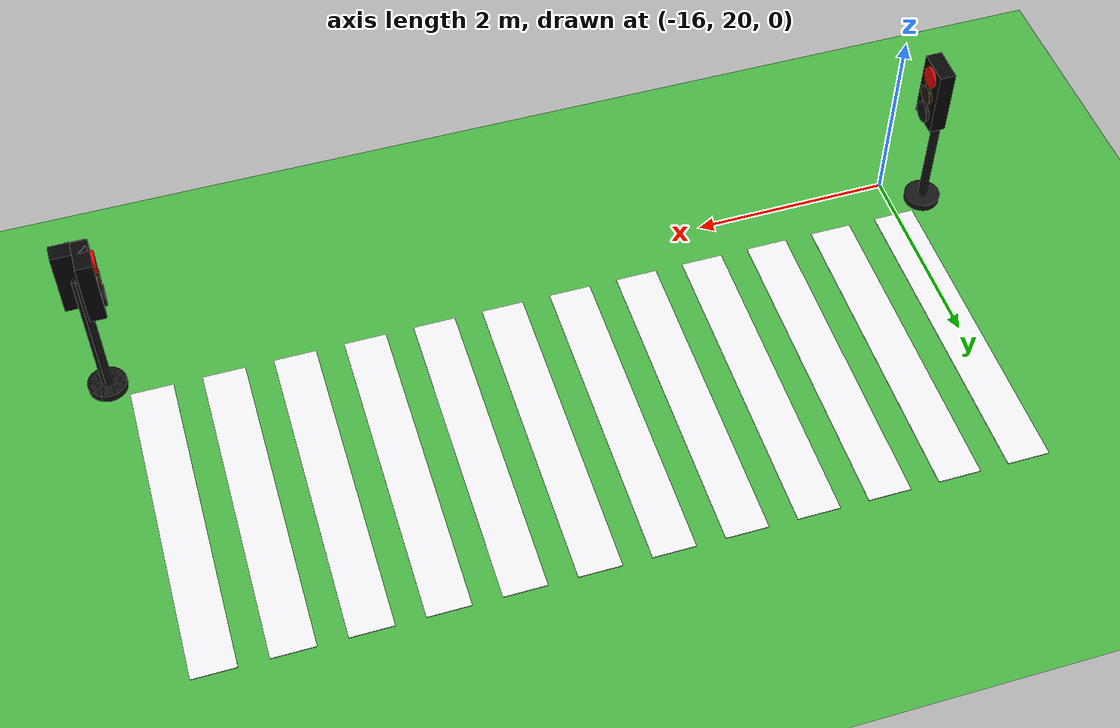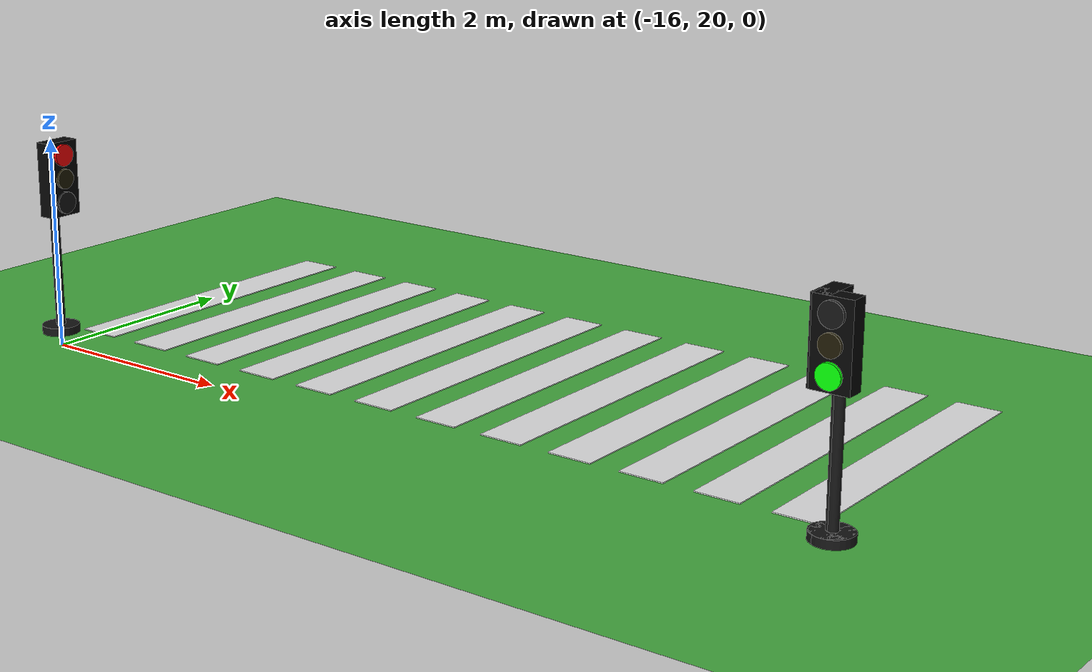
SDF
<sdf version="1.10">
 <world name="city_second">
  <model name="ground_plane">
   <static>true</static>
   <link name="link">
    <collision name="collision">
     <geometry><plane><normal>0 0 1</normal><size>300 300</size></plane></geometry>
    </collision>
    <visual name="visual">
     <geometry><plane><normal>0 0 1</normal><size>300 300</size></plane></geometry>
     <material>
      <ambient>0.280000001 0.689999998 0.25999999 1</ambient>
      <diffuse>0.280000001 0.689999998 0.25999999 1</diffuse>
      <specular>0.0299999993 0.0299999993 0.0299999993 1</specular>
     </material>
    </visual>
    <inertial>
     <mass>1</mass>
     <inertia><ixx>1</ixx><ixy>0</ixy><ixz>0</ixz><iyy>1</iyy><iyz>0</iyz><izz>1</izz></inertia>
    </inertial>
   </link>
  </model>
  <model name="crosswalk_h_1_1_south_7_6">
   <static>true</static>
   <pose>-12.1145 22.0322 0.017000000000000001 0 0 0</pose>
   <link name="stripe_1">
    <collision name="collision">
     <geometry><box><size>0.41999999999999998 3.2000000000000002 0.01</size></box></geometry>
    </collision>
    <visual name="visual">
     <geometry><box><size>0.41999999999999998 3.2000000000000002 0.01</size></box></geometry>
     <material>
      <ambient>0.920000017 0.920000017 0.930000007 1</ambient>
      <diffuse>0.920000017 0.920000017 0.930000007 1</diffuse>
      <specular>0.0299999993 0.0299999993 0.0299999993 1</specular>
     </material>
    </visual>
    <pose>-3.8500000000000001 0 0 0 0 0</pose>
    <inertial>
     <mass>1</mass>
     <inertia><ixx>1</ixx><ixy>0</ixy><ixz>0</ixz><iyy>1</iyy><iyz>0</iyz><izz>1</izz></inertia>
    </inertial>
   </link>
   <link name="stripe_2">
    <collision name="collision">
     <geometry><box><size>0.41999999999999998 3.2000000000000002 0.01</size></box></geometry>
    </collision>
    <visual name="visual">
     <geometry><box><size>0.41999999999999998 3.2000000000000002 0.01</size></box></geometry>
     <material>
      <ambient>0.920000017 0.920000017 0.930000007 1</ambient>
      <diffuse>0.920000017 0.920000017 0.930000007 1</diffuse>
      <specular>0.0299999993 0.0299999993 0.0299999993 1</specular>
     </material>
    </visual>
    <pose>-3.1499999999999999 0 0 0 0 0</pose>
    <inertial>
     <mass>1</mass>
     <inertia><ixx>1</ixx><ixy>0</ixy><ixz>0</ixz><iyy>1</iyy><iyz>0</iyz><izz>1</izz></inertia>
    </inertial>
   </link>
   <link name="stripe_3">
    <collision name="collision">
     <geometry><box><size>0.41999999999999998 3.2000000000000002 0.01</size></box></geometry>
    </collision>
    <visual name="visual">
     <geometry><box><size>0.41999999999999998 3.2000000000000002 0.01</size></box></geometry>
     <material>
      <ambient>0.920000017 0.920000017 0.930000007 1</ambient>
      <diffuse>0.920000017 0.920000017 0.930000007 1</diffuse>
      <specular>0.0299999993 0.0299999993 0.0299999993 1</specular>
     </material>
    </visual>
    <pose>-2.4500000000000002 0 0 0 0 0</pose>
    <inertial>
     <mass>1</mass>
     <inertia><ixx>1</ixx><ixy>0</ixy><ixz>0</ixz><iyy>1</iyy><iyz>0</iyz><izz>1</izz></inertia>
    </inertial>
   </link>
   <link name="stripe_4">
    <collision name="collision">
     <geometry><box><size>0.41999999999999998 3.2000000000000002 0.01</size></box></geometry>
    </collision>
    <visual name="visual">
     <geometry><box><size>0.41999999999999998 3.2000000000000002 0.01</size></box></geometry>
     <material>
      <ambient>0.920000017 0.920000017 0.930000007 1</ambient>
      <diffuse>0.920000017 0.920000017 0.930000007 1</diffuse>
      <specular>0.0299999993 0.0299999993 0.0299999993 1</specular>
     </material>
    </visual>
    <pose>-1.75 0 0 0 0 0</pose>
    <inertial>
     <mass>1</mass>
     <inertia><ixx>1</ixx><ixy>0</ixy><ixz>0</ixz><iyy>1</iyy><iyz>0</iyz><izz>1</izz></inertia>
    </inertial>
   </link>
   <link name="stripe_5">
    <collision name="collision">
     <geometry><box><size>0.41999999999999998 3.2000000000000002 0.01</size></box></geometry>
    </collision>
    <visual name="visual">
     <geometry><box><size>0.41999999999999998 3.2000000000000002 0.01</size></box></geometry>
     <material>
      <ambient>0.920000017 0.920000017 0.930000007 1</ambient>
      <diffuse>0.920000017 0.920000017 0.930000007 1</diffuse>
      <specular>0.0299999993 0.0299999993 0.0299999993 1</specular>
     </material>
    </visual>
    <pose>-1.05 0 0 0 0 0</pose>
    <inertial>
     <mass>1</mass>
     <inertia><ixx>1</ixx><ixy>0</ixy><ixz>0</ixz><iyy>1</iyy><iyz>0</iyz><izz>1</izz></inertia>
    </inertial>
   </link>
   <link name="stripe_6">
    <collision name="collision">
     <geometry><box><size>0.41999999999999998 3.2000000000000002 0.01</size></box></geometry>
    </collision>
    <visual name="visual">
     <geometry><box><size>0.41999999999999998 3.2000000000000002 0.01</size></box></geometry>
     <material>
      <ambient>0.920000017 0.920000017 0.930000007 1</ambient>
      <diffuse>0.920000017 0.920000017 0.930000007 1</diffuse>
      <specular>0.0299999993 0.0299999993 0.0299999993 1</specular>
     </material>
    </visual>
    <pose>-0.34999999999999998 0 0 0 0 0</pose>
    <inertial>
     <mass>1</mass>
     <inertia><ixx>1</ixx><ixy>0</ixy><ixz>0</ixz><iyy>1</iyy><iyz>0</iyz><izz>1</izz></inertia>
    </inertial>
   </link>
   <link name="stripe_7">
    <collision name="collision">
     <geometry><box><size>0.41999999999999998 3.2000000000000002 0.01</size></box></geometry>
    </collision>
    <visual name="visual">
     <geometry><box><size>0.41999999999999998 3.2000000000000002 0.01</size></box></geometry>
     <material>
      <ambient>0.920000017 0.920000017 0.930000007 1</ambient>
      <diffuse>0.920000017 0.920000017 0.930000007 1</diffuse>
      <specular>0.0299999993 0.0299999993 0.0299999993 1</specular>
     </material>
    </visual>
    <pose>0.34999999999999998 0 0 0 0 0</pose>
    <inertial>
     <mass>1</mass>
     <inertia><ixx>1</ixx><ixy>0</ixy><ixz>0</ixz><iyy>1</iyy><iyz>0</iyz><izz>1</izz></inertia>
    </inertial>
   </link>
   <link name="stripe_8">
    <collision name="collision">
     <geometry><box><size>0.41999999999999998 3.2000000000000002 0.01</size></box></geometry>
    </collision>
    <visual name="visual">
     <geometry><box><size>0.41999999999999998 3.2000000000000002 0.01</size></box></geometry>
     <material>
      <ambient>0.920000017 0.920000017 0.930000007 1</ambient>
      <diffuse>0.920000017 0.920000017 0.930000007 1</diffuse>
      <specular>0.0299999993 0.0299999993 0.0299999993 1</specular>
     </material>
    </visual>
    <pose>1.05 0 0 0 0 0</pose>
    <inertial>
     <mass>1</mass>
     <inertia><ixx>1</ixx><ixy>0</ixy><ixz>0</ixz><iyy>1</iyy><iyz>0</iyz><izz>1</izz></inertia>
    </inertial>
   </link>
   <link name="stripe_9">
    <collision name="collision">
     <geometry><box><size>0.41999999999999998 3.2000000000000002 0.01</size></box></geometry>
    </collision>
    <visual name="visual">
     <geometry><box><size>0.41999999999999998 3.2000000000000002 0.01</size></box></geometry>
     <material>
      <ambient>0.920000017 0.920000017 0.930000007 1</ambient>
      <diffuse>0.920000017 0.920000017 0.930000007 1</diffuse>
      <specular>0.0299999993 0.0299999993 0.0299999993 1</specular>
     </material>
    </visual>
    <pose>1.75 0 0 0 0 0</pose>
    <inertial>
     <mass>1</mass>
     <inertia><ixx>1</ixx><ixy>0</ixy><ixz>0</ixz><iyy>1</iyy><iyz>0</iyz><izz>1</izz></inertia>
    </inertial>
   </link>
   <link name="stripe_10">
    <collision name="collision">
     <geometry><box><size>0.41999999999999998 3.2000000000000002 0.01</size></box></geometry>
    </collision>
    <visual name="visual">
     <geometry><box><size>0.41999999999999998 3.2000000000000002 0.01</size></box></geometry>
     <material>
      <ambient>0.920000017 0.920000017 0.930000007 1</ambient>
      <diffuse>0.920000017 0.920000017 0.930000007 1</diffuse>
      <specular>0.0299999993 0.0299999993 0.0299999993 1</specular>
     </material>
    </visual>
    <pose>2.4500000000000002 0 0 0 0 0</pose>
    <inertial>
     <mass>1</mass>
     <inertia><ixx>1</ixx><ixy>0</ixy><ixz>0</ixz><iyy>1</iyy><iyz>0</iyz><izz>1</izz></inertia>
    </inertial>
   </link>
   <link name="stripe_11">
    <collision name="collision">
     <geometry><box><size>0.41999999999999998 3.2000000000000002 0.01</size></box></geometry>
    </collision>
    <visual name="visual">
     <geometry><box><size>0.41999999999999998 3.2000000000000002 0.01</size></box></geometry>
     <material>
      <ambient>0.920000017 0.920000017 0.930000007 1</ambient>
      <diffuse>0.920000017 0.920000017 0.930000007 1</diffuse>
      <specular>0.0299999993 0.0299999993 0.0299999993 1</specular>
     </material>
    </visual>
    <pose>3.1499999999999999 0 0 0 0 0</pose>
    <inertial>
     <mass>1</mass>
     <inertia><ixx>1</ixx><ixy>0</ixy><ixz>0</ixz><iyy>1</iyy><iyz>0</iyz><izz>1</izz></inertia>
    </inertial>
   </link>
   <link name="stripe_12">
    <collision name="collision">
     <geometry><box><size>0.41999999999999998 3.2000000000000002 0.01</size></box></geometry>
    </collision>
    <visual name="visual">
     <geometry><box><size>0.41999999999999998 3.2000000000000002 0.01</size></box></geometry>
     <material>
      <ambient>0.920000017 0.920000017 0.930000007 1</ambient>
      <diffuse>0.920000017 0.920000017 0.930000007 1</diffuse>
      <specular>0.0299999993 0.0299999993 0.0299999993 1</specular>
     </material>
    </visual>
    <pose>3.8500000000000001 0 0 0 0 0</pose>
    <inertial>
     <mass>1</mass>
     <inertia><ixx>1</ixx><ixy>0</ixy><ixz>0</ixz><iyy>1</iyy><iyz>0</iyz><izz>1</izz></inertia>
    </inertial>
   </link>
  </model>
  <model name="simple_traffic_light_green_south_1_3_2">
   <static>true</static>
   <pose>-7.8629358100978832 20.257268512716777 0 0 0 -3.1415900000000754</pose>
   <link name="base">
    <pose>0 0 0.040000000000000001 0 0 0</pose>
    <collision name="collision">
     <geometry>
      <cylinder><radius>0.17999999999999999</radius><length>0.080000000000000002</length></cylinder>
     </geometry>
    </collision>
    <visual name="visual">
     <geometry>
      <cylinder><radius>0.17999999999999999</radius><length>0.080000000000000002</length></cylinder>
     </geometry>
     <material>
      <ambient>0.0799999982 0.0799999982 0.0799999982 1</ambient>
      <diffuse>0.0799999982 0.0799999982 0.0799999982 1</diffuse>
      <specular>0.150000006 0.150000006 0.150000006 1</specular>
      <emissive>0 0 0 1</emissive>
     </material>
    </visual>
   </link>
   <link name="pole">
    <pose>0 0 0.80000000000000004 0 0 0</pose>
    <collision name="collision">
     <geometry>
      <cylinder><radius>0.044999999999999998</radius><length>1.6000000000000001</length></cylinder>
     </geometry>
    </collision>
    <visual name="visual">
     <geometry>
      <cylinder><radius>0.044999999999999998</radius><length>1.6000000000000001</length></cylinder>
     </geometry>
     <material>
      <ambient>0.0799999982 0.0799999982 0.0799999982 1</ambient>
      <diffuse>0.0799999982 0.0799999982 0.0799999982 1</diffuse>
      <specular>0.150000006 0.150000006 0.150000006 1</specular>
      <emissive>0 0 0 1</emissive>
     </material>
    </visual>
   </link>
   <link name="signal_box">
    <pose>0 0.089999999999999997 1.55 0 0 0</pose>
    <collision name="collision">
     <geometry><box><size>0.34000000000000002 0.16 0.71999999999999997</size></box></geometry>
    </collision>
    <visual name="visual">
     <geometry><box><size>0.34000000000000002 0.16 0.71999999999999997</size></box></geometry>
     <material>
      <ambient>0.0199999996 0.0199999996 0.0199999996 1</ambient>
      <diffuse>0.0199999996 0.0199999996 0.0199999996 1</diffuse>
      <specular>0.150000006 0.150000006 0.150000006 1</specular>
      <emissive>0 0 0 1</emissive>
     </material>
    </visual>
   </link>
   <link name="red_lens">
    <pose>0 0.18099999999999999 1.78 1.5707963268 0 0</pose>
    <collision name="collision">
     <geometry><cylinder><radius>0.105</radius><length>0.035000000000000003</length></cylinder></geometry>
    </collision>
    <visual name="visual">
     <geometry><cylinder><radius>0.105</radius><length>0.035000000000000003</length></cylinder></geometry>
     <material>
      <ambient>0.0799999982 0.0799999982 0.0799999982 1</ambient>
      <diffuse>0.0799999982 0.0799999982 0.0799999982 1</diffuse>
      <specular>0.150000006 0.150000006 0.150000006 1</specular>
      <emissive>0 0 0 1</emissive>
     </material>
    </visual>
   </link>
   <link name="yellow_lens">
    <pose>0 0.182 1.55 1.5707963268 0 0</pose>
    <collision name="collision">
     <geometry>
      <cylinder><radius>0.095000000000000001</radius><length>0.035000000000000003</length></cylinder>
     </geometry>
    </collision>
    <visual name="visual">
     <geometry>
      <cylinder><radius>0.095000000000000001</radius><length>0.035000000000000003</length></cylinder>
     </geometry>
     <material>
      <ambient>0.119999997 0.100000001 0.0199999996 1</ambient>
      <diffuse>0.119999997 0.100000001 0.0199999996 1</diffuse>
      <specular>0.150000006 0.150000006 0.150000006 1</specular>
      <emissive>0 0 0 1</emissive>
     </material>
    </visual>
   </link>
   <link name="green_lens">
    <pose>0 0.183 1.3200000000000001 1.5707963268 0 0</pose>
    <collision name="collision">
     <geometry><cylinder><radius>0.105</radius><length>0.035000000000000003</length></cylinder></geometry>
    </collision>
    <visual name="visual">
     <geometry><cylinder><radius>0.105</radius><length>0.035000000000000003</length></cylinder></geometry>
     <material>
      <ambient>0.0199999996 1 0.0199999996 1</ambient>
      <diffuse>0.0199999996 1 0.0199999996 1</diffuse>
      <specular>0.150000006 0.150000006 0.150000006 1</specular>
      <emissive>0.0199999996 1 0.0199999996 1</emissive>
     </material>
    </visual>
   </link>
   <light name="green_glow" type="point">
    <pose>0 0.28 1.32 0 0 0</pose>
    <diffuse>0.02 1 0.02 1</diffuse>
    <specular>0.02 1 0.02 1</specular>
    <attenuation>
     <range>3.0</range>
     <constant>0.8</constant>
     <linear>0.15</linear>
     <quadratic>0.02</quadratic>
    </attenuation>
    <cast_shadows>false</cast_shadows>
   </light>
  </model>
  <model name="simple_traffic_light_red_west_2_1">
   <static>true</static>
   <pose>-7.8804206978780122 20.265613883144834 -1.3877787807814457e-17 0 0 1.5707999672671704</pose>
   <link name="base">
    <pose>0 0 0.040000000000000001 0 0 0</pose>
    <collision name="collision">
     <geometry>
      <cylinder><radius>0.17999999999999999</radius><length>0.080000000000000002</length></cylinder>
     </geometry>
    </collision>
    <visual name="visual">
     <geometry>
      <cylinder><radius>0.17999999999999999</radius><length>0.080000000000000002</length></cylinder>
     </geometry>
     <material>
      <ambient>0.0799999982 0.0799999982 0.0799999982 1</ambient>
      <diffuse>0.0799999982 0.0799999982 0.0799999982 1</diffuse>
      <specular>0.150000006 0.150000006 0.150000006 1</specular>
      <emissive>0 0 0 1</emissive>
     </material>
    </visual>
    <inertial>
     <mass>1</mass>
     <inertia><ixx>1</ixx><ixy>0</ixy><ixz>0</ixz><iyy>1</iyy><iyz>0</iyz><izz>1</izz></inertia>
    </inertial>
   </link>
   <link name="pole">
    <pose>0 0 0.80000000000000004 0 0 0</pose>
    <collision name="collision">
     <geometry>
      <cylinder><radius>0.044999999999999998</radius><length>1.6000000000000001</length></cylinder>
     </geometry>
    </collision>
    <visual name="visual">
     <geometry>
      <cylinder><radius>0.044999999999999998</radius><length>1.6000000000000001</length></cylinder>
     </geometry>
     <material>
      <ambient>0.0799999982 0.0799999982 0.0799999982 1</ambient>
      <diffuse>0.0799999982 0.0799999982 0.0799999982 1</diffuse>
      <specular>0.150000006 0.150000006 0.150000006 1</specular>
      <emissive>0 0 0 1</emissive>
     </material>
    </visual>
    <inertial>
     <mass>1</mass>
     <inertia><ixx>1</ixx><ixy>0</ixy><ixz>0</ixz><iyy>1</iyy><iyz>0</iyz><izz>1</izz></inertia>
    </inertial>
   </link>
   <link name="signal_box">
    <pose>-7.1054273576010019e-15 0.090000000000003411 1.5500000000000003 0 0 0</pose>
    <collision name="collision">
     <geometry><box><size>0.34000000000000002 0.16 0.71999999999999997</size></box></geometry>
    </collision>
    <visual name="visual">
     <geometry><box><size>0.34000000000000002 0.16 0.71999999999999997</size></box></geometry>
     <material>
      <ambient>0.0199999996 0.0199999996 0.0199999996 1</ambient>
      <diffuse>0.0199999996 0.0199999996 0.0199999996 1</diffuse>
      <specular>0.150000006 0.150000006 0.150000006 1</specular>
      <emissive>0 0 0 1</emissive>
     </material>
    </visual>
    <inertial>
     <mass>1</mass>
     <inertia><ixx>1</ixx><ixy>0</ixy><ixz>0</ixz><iyy>1</iyy><iyz>0</iyz><izz>1</izz></inertia>
    </inertial>
   </link>
   <link name="red_lens">
    <pose>0 0.18100000000000449 1.78 1.5707963267999998 8.0126081257495458e-28 -3.1401849173675498e-16</pose>
    <collision name="collision">
     <geometry><cylinder><radius>0.105</radius><length>0.035000000000000003</length></cylinder></geometry>
    </collision>
    <visual name="visual">
     <geometry><cylinder><radius>0.105</radius><length>0.035000000000000003</length></cylinder></geometry>
     <material>
      <ambient>1 0.0199999996 0.0199999996 1</ambient>
      <diffuse>1 0.0199999996 0.0199999996 1</diffuse>
      <specular>0.150000006 0.150000006 0.150000006 1</specular>
      <emissive>1 0.0199999996 0.0199999996 1</emissive>
     </material>
    </visual>
    <inertial>
     <mass>1</mass>
     <inertia><ixx>1</ixx><ixy>0</ixy><ixz>0</ixz><iyy>1</iyy><iyz>0</iyz><izz>1</izz></inertia>
    </inertial>
   </link>
   <link name="yellow_lens">
    <pose>-7.1054273576010019e-15 0.18200000000000216 1.5500000000000003 1.5707963267999998 8.0126081257495458e-28 -3.1401849173675498e-16</pose>
    <collision name="collision">
     <geometry>
      <cylinder><radius>0.095000000000000001</radius><length>0.035000000000000003</length></cylinder>
     </geometry>
    </collision>
    <visual name="visual">
     <geometry>
      <cylinder><radius>0.095000000000000001</radius><length>0.035000000000000003</length></cylinder>
     </geometry>
     <material>
      <ambient>0.119999997 0.100000001 0.0199999996 1</ambient>
      <diffuse>0.119999997 0.100000001 0.0199999996 1</diffuse>
      <specular>0.150000006 0.150000006 0.150000006 1</specular>
      <emissive>0 0 0 1</emissive>
     </material>
    </visual>
    <inertial>
     <mass>1</mass>
     <inertia><ixx>1</ixx><ixy>0</ixy><ixz>0</ixz><iyy>1</iyy><iyz>0</iyz><izz>1</izz></inertia>
    </inertial>
   </link>
   <link name="green_lens">
    <pose>0 0.18300000000000693 1.3199999999999998 1.5707963267999998 8.0126081257495458e-28 -3.1401849173675498e-16</pose>
    <collision name="collision">
     <geometry><cylinder><radius>0.105</radius><length>0.035000000000000003</length></cylinder></geometry>
    </collision>
    <visual name="visual">
     <geometry><cylinder><radius>0.105</radius><length>0.035000000000000003</length></cylinder></geometry>
     <material>
      <ambient>0.0799999982 0.0799999982 0.0799999982 1</ambient>
      <diffuse>0.0799999982 0.0799999982 0.0799999982 1</diffuse>
      <specular>0.150000006 0.150000006 0.150000006 1</specular>
      <emissive>0 0 0 1</emissive>
     </material>
    </visual>
    <inertial>
     <mass>1</mass>
     <inertia><ixx>1</ixx><ixy>0</ixy><ixz>0</ixz><iyy>1</iyy><iyz>0</iyz><izz>1</izz></inertia>
    </inertial>
   </link>
   <light name="red_glow" type="point">
    <pose>0 0.28 1.78 0 0 0</pose>
    <diffuse>1 0.02 0.02 1</diffuse>
    <specular>1 0.02 0.02 1</specular>
    <attenuation>
     <range>3.0</range>
     <constant>0.8</constant>
     <linear>0.15</linear>
     <quadratic>0.02</quadratic>
    </attenuation>
    <cast_shadows>false</cast_shadows>
   </light>
  </model>
  <model name="simple_traffic_light_red_east_6">
   <static>true</static>
   <pose>-16.3438603016297 20.282682133962247 -6.9388939039072284e-18 0 0 -1.5707999672671704</pose>
   <link name="base">
    <pose>0 0 0.040000000000000001 0 0 0</pose>
    <collision name="collision">
     <geometry>
      <cylinder><radius>0.17999999999999999</radius><length>0.080000000000000002</length></cylinder>
     </geometry>
    </collision>
    <visual name="visual">
     <geometry>
      <cylinder><radius>0.17999999999999999</radius><length>0.080000000000000002</length></cylinder>
     </geometry>
     <material>
      <ambient>0.0799999982 0.0799999982 0.0799999982 1</ambient>
      <diffuse>0.0799999982 0.0799999982 0.0799999982 1</diffuse>
      <specular>0.150000006 0.150000006 0.150000006 1</specular>
      <emissive>0 0 0 1</emissive>
     </material>
    </visual>
    <inertial>
     <mass>1</mass>
     <inertia><ixx>1</ixx><ixy>0</ixy><ixz>0</ixz><iyy>1</iyy><iyz>0</iyz><izz>1</izz></inertia>
    </inertial>
   </link>
   <link name="pole">
    <pose>-7.1054273576010019e-15 7.1054273576010019e-15 0.80000000000000004 0 0 0</pose>
    <collision name="collision">
     <geometry>
      <cylinder><radius>0.044999999999999998</radius><length>1.6000000000000001</length></cylinder>
     </geometry>
    </collision>
    <visual name="visual">
     <geometry>
      <cylinder><radius>0.044999999999999998</radius><length>1.6000000000000001</length></cylinder>
     </geometry>
     <material>
      <ambient>0.0799999982 0.0799999982 0.0799999982 1</ambient>
      <diffuse>0.0799999982 0.0799999982 0.0799999982 1</diffuse>
      <specular>0.150000006 0.150000006 0.150000006 1</specular>
      <emissive>0 0 0 1</emissive>
     </material>
    </visual>
    <inertial>
     <mass>1</mass>
     <inertia><ixx>1</ixx><ixy>0</ixy><ixz>0</ixz><iyy>1</iyy><iyz>0</iyz><izz>1</izz></inertia>
    </inertial>
   </link>
   <link name="signal_box">
    <pose>7.1054273576010019e-15 0.090000000000003411 1.5500000000000003 0 0 0</pose>
    <collision name="collision">
     <geometry><box><size>0.34000000000000002 0.16 0.71999999999999997</size></box></geometry>
    </collision>
    <visual name="visual">
     <geometry><box><size>0.34000000000000002 0.16 0.71999999999999997</size></box></geometry>
     <material>
      <ambient>0.0199999996 0.0199999996 0.0199999996 1</ambient>
      <diffuse>0.0199999996 0.0199999996 0.0199999996 1</diffuse>
      <specular>0.150000006 0.150000006 0.150000006 1</specular>
      <emissive>0 0 0 1</emissive>
     </material>
    </visual>
    <inertial>
     <mass>1</mass>
     <inertia><ixx>1</ixx><ixy>0</ixy><ixz>0</ixz><iyy>1</iyy><iyz>0</iyz><izz>1</izz></inertia>
    </inertial>
   </link>
   <link name="red_lens">
    <pose>-7.1054273576010019e-15 0.18100000000000449 1.78 1.5707963267999998 -8.0126081257495458e-28 3.1401849173675498e-16</pose>
    <collision name="collision">
     <geometry><cylinder><radius>0.105</radius><length>0.035000000000000003</length></cylinder></geometry>
    </collision>
    <visual name="visual">
     <geometry><cylinder><radius>0.105</radius><length>0.035000000000000003</length></cylinder></geometry>
     <material>
      <ambient>1 0.0199999996 0.0199999996 1</ambient>
      <diffuse>1 0.0199999996 0.0199999996 1</diffuse>
      <specular>0.150000006 0.150000006 0.150000006 1</specular>
      <emissive>1 0.0199999996 0.0199999996 1</emissive>
     </material>
    </visual>
    <inertial>
     <mass>1</mass>
     <inertia><ixx>1</ixx><ixy>0</ixy><ixz>0</ixz><iyy>1</iyy><iyz>0</iyz><izz>1</izz></inertia>
    </inertial>
   </link>
   <link name="yellow_lens">
    <pose>-7.1054273576010019e-15 0.18200000000000216 1.5500000000000003 1.5707963267999998 -8.0126081257495458e-28 3.1401849173675498e-16</pose>
    <collision name="collision">
     <geometry>
      <cylinder><radius>0.095000000000000001</radius><length>0.035000000000000003</length></cylinder>
     </geometry>
    </collision>
    <visual name="visual">
     <geometry>
      <cylinder><radius>0.095000000000000001</radius><length>0.035000000000000003</length></cylinder>
     </geometry>
     <material>
      <ambient>0.119999997 0.100000001 0.0199999996 1</ambient>
      <diffuse>0.119999997 0.100000001 0.0199999996 1</diffuse>
      <specular>0.150000006 0.150000006 0.150000006 1</specular>
      <emissive>0 0 0 1</emissive>
     </material>
    </visual>
    <inertial>
     <mass>1</mass>
     <inertia><ixx>1</ixx><ixy>0</ixy><ixz>0</ixz><iyy>1</iyy><iyz>0</iyz><izz>1</izz></inertia>
    </inertial>
   </link>
   <link name="green_lens">
    <pose>0 0.18300000000000693 1.3199999999999998 1.5707963267999998 -8.0126081257495458e-28 3.1401849173675498e-16</pose>
    <collision name="collision">
     <geometry><cylinder><radius>0.105</radius><length>0.035000000000000003</length></cylinder></geometry>
    </collision>
    <visual name="visual">
     <geometry><cylinder><radius>0.105</radius><length>0.035000000000000003</length></cylinder></geometry>
     <material>
      <ambient>0.0799999982 0.0799999982 0.0799999982 1</ambient>
      <diffuse>0.0799999982 0.0799999982 0.0799999982 1</diffuse>
      <specular>0.150000006 0.150000006 0.150000006 1</specular>
      <emissive>0 0 0 1</emissive>
     </material>
    </visual>
    <inertial>
     <mass>1</mass>
     <inertia><ixx>1</ixx><ixy>0</ixy><ixz>0</ixz><iyy>1</iyy><iyz>0</iyz><izz>1</izz></inertia>
    </inertial>
   </link>
   <light name="red_glow" type="point">
    <pose>0 0.28 1.78 0 0 0</pose>
    <diffuse>1 0.02 0.02 1</diffuse>
    <specular>1 0.02 0.02 1</specular>
    <attenuation>
     <range>3.0</range>
     <constant>0.8</constant>
     <linear>0.15</linear>
     <quadratic>0.02</quadratic>
    </attenuation>
    <cast_shadows>false</cast_shadows>
   </light>
  </model>
 </world>
</sdf>
